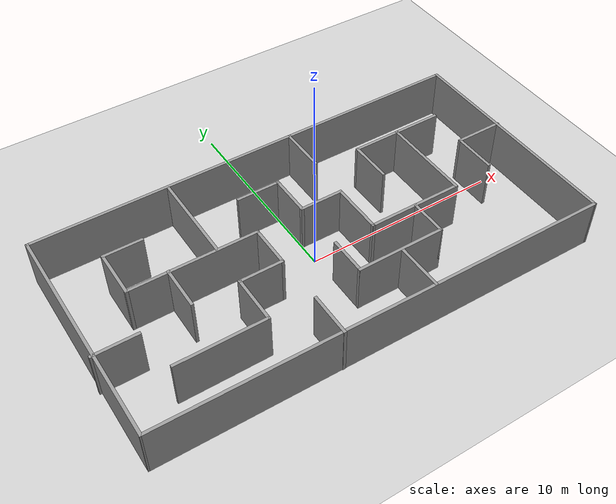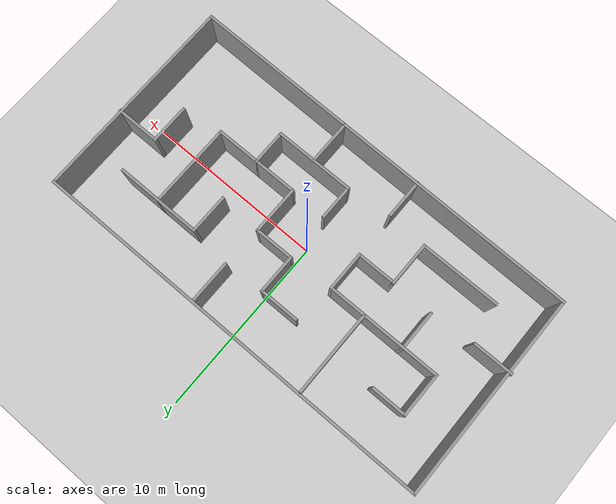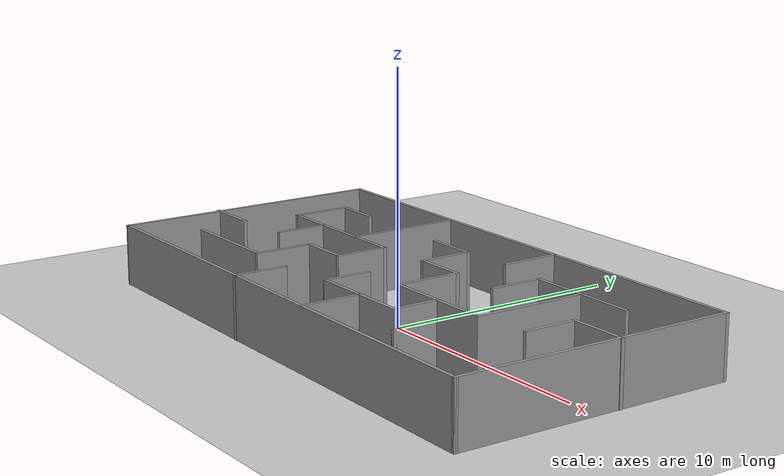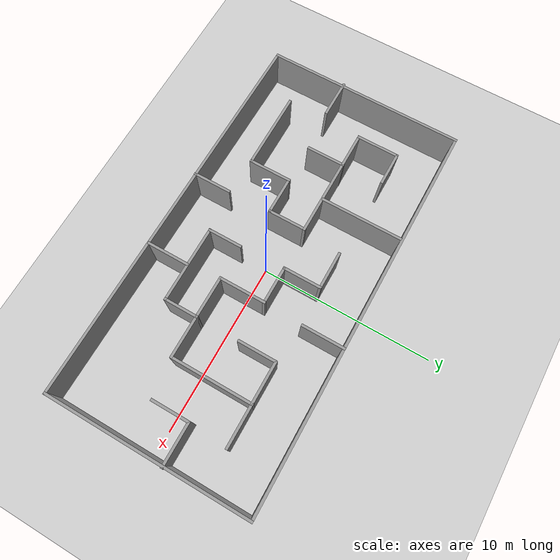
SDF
<?xml version='1.0'?>
<sdf version='1.7'>
  <model name='regular_maze'>
    <include>
      <uri>model://ground_plane</uri>
    </include>
    <pose>0.059107 -0.042971 0 0 -0 0</pose>
    <link name='Wall_0'>
      <collision name='Wall_0_Collision'>
        <geometry>
          <box>
            <size>11.5 0.15 2.5</size>
          </box>
        </geometry>
        <pose>0 0 1.25 0 -0 0</pose>
      </collision>
      <visual name='Wall_0_Visual'>
        <pose>0 0 1.25 0 -0 0</pose>
        <geometry>
          <box>
            <size>11.5 0.15 2.5</size>
          </box>
        </geometry>
        <material>
          <script>
            <uri>file://media/materials/scripts/gazebo.material</uri>
            <name>Gazebo/Grey</name>
          </script>
          <ambient>1 1 1 1</ambient>
        </material>
        <meta>
          <layer>0</layer>
        </meta>
      </visual>
      <pose>-11.2658 0.125413 0 0 -0 -1.5708</pose>
    </link>
    <link name='Wall_10'>
      <collision name='Wall_10_Collision'>
        <geometry>
          <box>
            <size>2.5 0.15 2.5</size>
          </box>
        </geometry>
        <pose>0 0 1.25 0 -0 0</pose>
      </collision>
      <visual name='Wall_10_Visual'>
        <pose>0 0 1.25 0 -0 0</pose>
        <geometry>
          <box>
            <size>2.5 0.15 2.5</size>
          </box>
        </geometry>
        <material>
          <script>
            <uri>file://media/materials/scripts/gazebo.material</uri>
            <name>Gazebo/Grey</name>
          </script>
          <ambient>1 1 1 1</ambient>
        </material>
        <meta>
          <layer>0</layer>
        </meta>
      </visual>
      <pose>2.31323 -4.49286 0 0 -0 1.5708</pose>
    </link>
    <link name='Wall_12'>
      <collision name='Wall_12_Collision'>
        <geometry>
          <box>
            <size>4.5 0.15 2.5</size>
          </box>
        </geometry>
        <pose>0 0 1.25 0 -0 0</pose>
      </collision>
      <visual name='Wall_12_Visual'>
        <pose>0 0 1.25 0 -0 0</pose>
        <geometry>
          <box>
            <size>4.5 0.15 2.5</size>
          </box>
        </geometry>
        <material>
          <script>
            <uri>file://media/materials/scripts/gazebo.material</uri>
            <name>Gazebo/Grey</name>
          </script>
          <ambient>1 1 1 1</ambient>
        </material>
        <meta>
          <layer>0</layer>
        </meta>
      </visual>
      <pose>2.27197 -3.27571 0 0 -0 0</pose>
    </link>
    <link name='Wall_13'>
      <collision name='Wall_13_Collision'>
        <geometry>
          <box>
            <size>2 0.15 2.5</size>
          </box>
        </geometry>
        <pose>0 0 1.25 0 -0 0</pose>
      </collision>
      <visual name='Wall_13_Visual'>
        <pose>0 0 1.25 0 -0 0</pose>
        <geometry>
          <box>
            <size>2 0.15 2.5</size>
          </box>
        </geometry>
        <material>
          <script>
            <uri>file://media/materials/scripts/gazebo.material</uri>
            <name>Gazebo/Grey</name>
          </script>
          <ambient>1 1 1 1</ambient>
        </material>
        <meta>
          <layer>0</layer>
        </meta>
      </visual>
      <pose>4.44697 -2.35071 0 0 -0 1.5708</pose>
    </link>
    <link name='Wall_14'>
      <collision name='Wall_14_Collision'>
        <geometry>
          <box>
            <size>2.5 0.15 2.5</size>
          </box>
        </geometry>
        <pose>0 0 1.25 0 -0 0</pose>
      </collision>
      <visual name='Wall_14_Visual'>
        <pose>0 0 1.25 0 -0 0</pose>
        <geometry>
          <box>
            <size>2.5 0.15 2.5</size>
          </box>
        </geometry>
        <material>
          <script>
            <uri>file://media/materials/scripts/gazebo.material</uri>
            <name>Gazebo/Grey</name>
          </script>
          <ambient>1 1 1 1</ambient>
        </material>
        <meta>
          <layer>0</layer>
        </meta>
      </visual>
      <pose>5.62197 -1.42571 0 0 -0 0</pose>
    </link>
    <link name='Wall_15'>
      <collision name='Wall_15_Collision'>
        <geometry>
          <box>
            <size>4.75 0.15 2.5</size>
          </box>
        </geometry>
        <pose>0 0 1.25 0 -0 0</pose>
      </collision>
      <visual name='Wall_15_Visual'>
        <pose>0 0 1.25 0 -0 0</pose>
        <geometry>
          <box>
            <size>4.75 0.15 2.5</size>
          </box>
        </geometry>
        <material>
          <script>
            <uri>file://media/materials/scripts/gazebo.material</uri>
            <name>Gazebo/Grey</name>
          </script>
          <ambient>1 1 1 1</ambient>
        </material>
        <meta>
          <layer>0</layer>
        </meta>
      </visual>
      <pose>6.79697 0.874292 0 0 -0 1.5708</pose>
    </link>
    <link name='Wall_16'>
      <collision name='Wall_16_Collision'>
        <geometry>
          <box>
            <size>2.5 0.15 2.5</size>
          </box>
        </geometry>
        <pose>0 0 1.25 0 -0 0</pose>
      </collision>
      <visual name='Wall_16_Visual'>
        <pose>0 0 1.25 0 -0 0</pose>
        <geometry>
          <box>
            <size>2.5 0.15 2.5</size>
          </box>
        </geometry>
        <material>
          <script>
            <uri>file://media/materials/scripts/gazebo.material</uri>
            <name>Gazebo/Grey</name>
          </script>
          <ambient>1 1 1 1</ambient>
        </material>
        <meta>
          <layer>0</layer>
        </meta>
      </visual>
      <pose>7.97197 3.17429 0 0 -0 0</pose>
    </link>
    <link name='Wall_18'>
      <collision name='Wall_18_Collision'>
        <geometry>
          <box>
            <size>2.5 0.15 2.5</size>
          </box>
        </geometry>
        <pose>0 0 1.25 0 -0 0</pose>
      </collision>
      <visual name='Wall_18_Visual'>
        <pose>0 0 1.25 0 -0 0</pose>
        <geometry>
          <box>
            <size>2.5 0.15 2.5</size>
          </box>
        </geometry>
        <material>
          <script>
            <uri>file://media/materials/scripts/gazebo.material</uri>
            <name>Gazebo/Grey</name>
          </script>
          <ambient>1 1 1 1</ambient>
        </material>
        <meta>
          <layer>0</layer>
        </meta>
      </visual>
      <pose>5.62197 3.17429 0 0 -0 3.14159</pose>
    </link>
    <link name='Wall_19'>
      <collision name='Wall_19_Collision'>
        <geometry>
          <box>
            <size>2.25 0.15 2.5</size>
          </box>
        </geometry>
        <pose>0 0 1.25 0 -0 0</pose>
      </collision>
      <visual name='Wall_19_Visual'>
        <pose>0 0 1.25 0 -0 0</pose>
        <geometry>
          <box>
            <size>2.25 0.15 2.5</size>
          </box>
        </geometry>
        <material>
          <script>
            <uri>file://media/materials/scripts/gazebo.material</uri>
            <name>Gazebo/Grey</name>
          </script>
          <ambient>1 1 1 1</ambient>
        </material>
        <meta>
          <layer>0</layer>
        </meta>
      </visual>
      <pose>4.44697 2.12429 0 0 -0 -1.5708</pose>
    </link>
    <link name='Wall_2'>
      <collision name='Wall_2_Collision'>
        <geometry>
          <box>
            <size>22.75 0.15 2.5</size>
          </box>
        </geometry>
        <pose>0 0 1.25 0 -0 0</pose>
      </collision>
      <visual name='Wall_2_Visual'>
        <pose>0 0 1.25 0 -0 0</pose>
        <geometry>
          <box>
            <size>22.75 0.15 2.5</size>
          </box>
        </geometry>
        <material>
          <script>
            <uri>file://media/materials/scripts/gazebo.material</uri>
            <name>Gazebo/Grey</name>
          </script>
          <ambient>1 1 1 1</ambient>
        </material>
        <meta>
          <layer>0</layer>
        </meta>
      </visual>
      <pose>0.034228 5.80041 0 0 -0 0</pose>
    </link>
    <link name='Wall_21'>
      <collision name='Wall_21_Collision'>
        <geometry>
          <box>
            <size>2.5 0.15 2.5</size>
          </box>
        </geometry>
        <pose>0 0 1.25 0 -0 0</pose>
      </collision>
      <visual name='Wall_21_Visual'>
        <pose>0 0 1.25 0 -0 0</pose>
        <geometry>
          <box>
            <size>2.5 0.15 2.5</size>
          </box>
        </geometry>
        <material>
          <script>
            <uri>file://media/materials/scripts/gazebo.material</uri>
            <name>Gazebo/Grey</name>
          </script>
          <ambient>1 1 1 1</ambient>
        </material>
        <meta>
          <layer>0</layer>
        </meta>
      </visual>
      <pose>3.27197 -1.42571 0 0 -0 3.14159</pose>
    </link>
    <link name='Wall_22'>
      <collision name='Wall_22_Collision'>
        <geometry>
          <box>
            <size>2.75 0.15 2.5</size>
          </box>
        </geometry>
        <pose>0 0 1.25 0 -0 0</pose>
      </collision>
      <visual name='Wall_22_Visual'>
        <pose>0 0 1.25 0 -0 0</pose>
        <geometry>
          <box>
            <size>2.75 0.15 2.5</size>
          </box>
        </geometry>
        <material>
          <script>
            <uri>file://media/materials/scripts/gazebo.material</uri>
            <name>Gazebo/Grey</name>
          </script>
          <ambient>1 1 1 1</ambient>
        </material>
        <meta>
          <layer>0</layer>
        </meta>
      </visual>
      <pose>2.09697 -0.125708 0 0 -0 1.5708</pose>
    </link>
    <link name='Wall_23'>
      <collision name='Wall_23_Collision'>
        <geometry>
          <box>
            <size>2.25 0.15 2.5</size>
          </box>
        </geometry>
        <pose>0 0 1.25 0 -0 0</pose>
      </collision>
      <visual name='Wall_23_Visual'>
        <pose>0 0 1.25 0 -0 0</pose>
        <geometry>
          <box>
            <size>2.25 0.15 2.5</size>
          </box>
        </geometry>
        <material>
          <script>
            <uri>file://media/materials/scripts/gazebo.material</uri>
            <name>Gazebo/Grey</name>
          </script>
          <ambient>1 1 1 1</ambient>
        </material>
        <meta>
          <layer>0</layer>
        </meta>
      </visual>
      <pose>1.04697 1.17429 0 0 -0 3.14159</pose>
    </link>
    <link name='Wall_24'>
      <collision name='Wall_24_Collision'>
        <geometry>
          <box>
            <size>2.25 0.15 2.5</size>
          </box>
        </geometry>
        <pose>0 0 1.25 0 -0 0</pose>
      </collision>
      <visual name='Wall_24_Visual'>
        <pose>0 0 1.25 0 -0 0</pose>
        <geometry>
          <box>
            <size>2.25 0.15 2.5</size>
          </box>
        </geometry>
        <material>
          <script>
            <uri>file://media/materials/scripts/gazebo.material</uri>
            <name>Gazebo/Grey</name>
          </script>
          <ambient>1 1 1 1</ambient>
        </material>
        <meta>
          <layer>0</layer>
        </meta>
      </visual>
      <pose>-0.003031 2.22429 0 0 -0 1.5708</pose>
    </link>
    <link name='Wall_25'>
      <collision name='Wall_25_Collision'>
        <geometry>
          <box>
            <size>2.25 0.15 2.5</size>
          </box>
        </geometry>
        <pose>0 0 1.25 0 -0 0</pose>
      </collision>
      <visual name='Wall_25_Visual'>
        <pose>0 0 1.25 0 -0 0</pose>
        <geometry>
          <box>
            <size>2.25 0.15 2.5</size>
          </box>
        </geometry>
        <material>
          <script>
            <uri>file://media/materials/scripts/gazebo.material</uri>
            <name>Gazebo/Grey</name>
          </script>
          <ambient>1 1 1 1</ambient>
        </material>
        <meta>
          <layer>0</layer>
        </meta>
      </visual>
      <pose>-1.05303 3.27429 0 0 -0 3.14159</pose>
    </link>
    <link name='Wall_27'>
      <collision name='Wall_27_Collision'>
        <geometry>
          <box>
            <size>4.5 0.15 2.5</size>
          </box>
        </geometry>
        <pose>0 0 1.25 0 -0 0</pose>
      </collision>
      <visual name='Wall_27_Visual'>
        <pose>0 0 1.25 0 -0 0</pose>
        <geometry>
          <box>
            <size>4.5 0.15 2.5</size>
          </box>
        </geometry>
        <material>
          <script>
            <uri>file://media/materials/scripts/gazebo.material</uri>
            <name>Gazebo/Grey</name>
          </script>
          <ambient>1 1 1 1</ambient>
        </material>
        <meta>
          <layer>0</layer>
        </meta>
      </visual>
      <pose>-6.69862 -3.41642 0 0 -0 0</pose>
    </link>
    <link name='Wall_28'>
      <collision name='Wall_28_Collision'>
        <geometry>
          <box>
            <size>2.5 0.15 2.5</size>
          </box>
        </geometry>
        <pose>0 0 1.25 0 -0 0</pose>
      </collision>
      <visual name='Wall_28_Visual'>
        <pose>0 0 1.25 0 -0 0</pose>
        <geometry>
          <box>
            <size>2.5 0.15 2.5</size>
          </box>
        </geometry>
        <material>
          <script>
            <uri>file://media/materials/scripts/gazebo.material</uri>
            <name>Gazebo/Grey</name>
          </script>
          <ambient>1 1 1 1</ambient>
        </material>
        <meta>
          <layer>0</layer>
        </meta>
      </visual>
      <pose>-4.52362 -2.24142 0 0 -0 1.5708</pose>
    </link>
    <link name='Wall_29'>
      <collision name='Wall_29_Collision'>
        <geometry>
          <box>
            <size>2.25 0.15 2.5</size>
          </box>
        </geometry>
        <pose>0 0 1.25 0 -0 0</pose>
      </collision>
      <visual name='Wall_29_Visual'>
        <pose>0 0 1.25 0 -0 0</pose>
        <geometry>
          <box>
            <size>2.25 0.15 2.5</size>
          </box>
        </geometry>
        <material>
          <script>
            <uri>file://media/materials/scripts/gazebo.material</uri>
            <name>Gazebo/Grey</name>
          </script>
          <ambient>1 1 1 1</ambient>
        </material>
        <meta>
          <layer>0</layer>
        </meta>
      </visual>
      <pose>-3.47362 -1.06642 0 0 -0 0</pose>
    </link>
    <link name='Wall_3'>
      <collision name='Wall_3_Collision'>
        <geometry>
          <box>
            <size>11.75 0.15 2.5</size>
          </box>
        </geometry>
        <pose>0 0 1.25 0 -0 0</pose>
      </collision>
      <visual name='Wall_3_Visual'>
        <pose>0 0 1.25 0 -0 0</pose>
        <geometry>
          <box>
            <size>11.75 0.15 2.5</size>
          </box>
        </geometry>
        <material>
          <script>
            <uri>file://media/materials/scripts/gazebo.material</uri>
            <name>Gazebo/Grey</name>
          </script>
          <ambient>1 1 1 1</ambient>
        </material>
        <meta>
          <layer>0</layer>
        </meta>
      </visual>
      <pose>11.3342 0.000412 0 0 -0 -1.5708</pose>
    </link>
    <link name='Wall_30'>
      <collision name='Wall_30_Collision'>
        <geometry>
          <box>
            <size>2.25 0.15 2.5</size>
          </box>
        </geometry>
        <pose>0 0 1.25 0 -0 0</pose>
      </collision>
      <visual name='Wall_30_Visual'>
        <pose>0 0 1.25 0 -0 0</pose>
        <geometry>
          <box>
            <size>2.25 0.15 2.5</size>
          </box>
        </geometry>
        <material>
          <script>
            <uri>file://media/materials/scripts/gazebo.material</uri>
            <name>Gazebo/Grey</name>
          </script>
          <ambient>1 1 1 1</ambient>
        </material>
        <meta>
          <layer>0</layer>
        </meta>
      </visual>
      <pose>-2.42362 -0.016423 0 0 -0 1.5708</pose>
    </link>
    <link name='Wall_31'>
      <collision name='Wall_31_Collision'>
        <geometry>
          <box>
            <size>6.5 0.15 2.5</size>
          </box>
        </geometry>
        <pose>0 0 1.25 0 -0 0</pose>
      </collision>
      <visual name='Wall_31_Visual'>
        <pose>0 0 1.25 0 -0 0</pose>
        <geometry>
          <box>
            <size>6.5 0.15 2.5</size>
          </box>
        </geometry>
        <material>
          <script>
            <uri>file://media/materials/scripts/gazebo.material</uri>
            <name>Gazebo/Grey</name>
          </script>
          <ambient>1 1 1 1</ambient>
        </material>
        <meta>
          <layer>0</layer>
        </meta>
      </visual>
      <pose>-5.59862 1.03358 0 0 -0 3.14159</pose>
    </link>
    <link name='Wall_32'>
      <collision name='Wall_32_Collision'>
        <geometry>
          <box>
            <size>2.5 0.15 2.5</size>
          </box>
        </geometry>
        <pose>0 0 1.25 0 -0 0</pose>
      </collision>
      <visual name='Wall_32_Visual'>
        <pose>0 0 1.25 0 -0 0</pose>
        <geometry>
          <box>
            <size>2.5 0.15 2.5</size>
          </box>
        </geometry>
        <material>
          <script>
            <uri>file://media/materials/scripts/gazebo.material</uri>
            <name>Gazebo/Grey</name>
          </script>
          <ambient>1 1 1 1</ambient>
        </material>
        <meta>
          <layer>0</layer>
        </meta>
      </visual>
      <pose>-8.77362 2.20858 0 0 -0 1.5708</pose>
    </link>
    <link name='Wall_33'>
      <collision name='Wall_33_Collision'>
        <geometry>
          <box>
            <size>2 0.15 2.5</size>
          </box>
        </geometry>
        <pose>0 0 1.25 0 -0 0</pose>
      </collision>
      <visual name='Wall_33_Visual'>
        <pose>0 0 1.25 0 -0 0</pose>
        <geometry>
          <box>
            <size>2 0.15 2.5</size>
          </box>
        </geometry>
        <material>
          <script>
            <uri>file://media/materials/scripts/gazebo.material</uri>
            <name>Gazebo/Grey</name>
          </script>
          <ambient>1 1 1 1</ambient>
        </material>
        <meta>
          <layer>0</layer>
        </meta>
      </visual>
      <pose>-7.84862 3.38358 0 0 -0 0</pose>
    </link>
    <link name='Wall_35'>
      <collision name='Wall_35_Collision'>
        <geometry>
          <box>
            <size>2.25 0.15 2.5</size>
          </box>
        </geometry>
        <pose>0 0 1.25 0 -0 0</pose>
      </collision>
      <visual name='Wall_35_Visual'>
        <pose>0 0 1.25 0 -0 0</pose>
        <geometry>
          <box>
            <size>2.25 0.15 2.5</size>
          </box>
        </geometry>
        <material>
          <script>
            <uri>file://media/materials/scripts/gazebo.material</uri>
            <name>Gazebo/Grey</name>
          </script>
          <ambient>1 1 1 1</ambient>
        </material>
        <meta>
          <layer>0</layer>
        </meta>
      </visual>
      <pose>-6.79807 0.00128 0 0 -0 -1.5708</pose>
    </link>
    <link name='Wall_37'>
      <collision name='Wall_37_Collision'>
        <geometry>
          <box>
            <size>4.75 0.15 2.5</size>
          </box>
        </geometry>
        <pose>0 0 1.25 0 -0 0</pose>
      </collision>
      <visual name='Wall_37_Visual'>
        <pose>0 0 1.25 0 -0 0</pose>
        <geometry>
          <box>
            <size>4.75 0.15 2.5</size>
          </box>
        </geometry>
        <material>
          <script>
            <uri>file://media/materials/scripts/gazebo.material</uri>
            <name>Gazebo/Grey</name>
          </script>
          <ambient>1 1 1 1</ambient>
        </material>
        <meta>
          <layer>0</layer>
        </meta>
      </visual>
      <pose>-4.44109 3.38646 0 0 -0 1.5708</pose>
    </link>
    <link name='Wall_39'>
      <collision name='Wall_39_Collision'>
        <geometry>
          <box>
            <size>2.5 0.15 2.5</size>
          </box>
        </geometry>
        <pose>0 0 1.25 0 -0 0</pose>
      </collision>
      <visual name='Wall_39_Visual'>
        <pose>0 0 1.25 0 -0 0</pose>
        <geometry>
          <box>
            <size>2.5 0.15 2.5</size>
          </box>
        </geometry>
        <material>
          <script>
            <uri>file://media/materials/scripts/gazebo.material</uri>
            <name>Gazebo/Grey</name>
          </script>
          <ambient>1 1 1 1</ambient>
        </material>
        <meta>
          <layer>0</layer>
        </meta>
      </visual>
      <pose>2.18789 4.62173 0 0 -0 -1.5708</pose>
    </link>
    <link name='Wall_4'>
      <collision name='Wall_4_Collision'>
        <geometry>
          <box>
            <size>22.7514 0.15 2.5</size>
          </box>
        </geometry>
        <pose>0 0 1.25 0 -0 0</pose>
      </collision>
      <visual name='Wall_4_Visual'>
        <pose>0 0 1.25 0 -0 0</pose>
        <geometry>
          <box>
            <size>22.7514 0.15 2.5</size>
          </box>
        </geometry>
        <material>
          <script>
            <uri>file://media/materials/scripts/gazebo.material</uri>
            <name>Gazebo/Grey</name>
          </script>
          <ambient>1 1 1 1</ambient>
        </material>
        <meta>
          <layer>0</layer>
        </meta>
      </visual>
      <pose>0.034228 -5.67459 0 0 -0 3.13053</pose>
    </link>
    <link name='Wall_41'>
      <collision name='Wall_41_Collision'>
        <geometry>
          <box>
            <size>2.5 0.15 2.5</size>
          </box>
        </geometry>
        <pose>0 0 1.25 0 -0 0</pose>
      </collision>
      <visual name='Wall_41_Visual'>
        <pose>0 0 1.25 0 -0 0</pose>
        <geometry>
          <box>
            <size>2.5 0.15 2.5</size>
          </box>
        </geometry>
        <material>
          <script>
            <uri>file://media/materials/scripts/gazebo.material</uri>
            <name>Gazebo/Grey</name>
          </script>
          <ambient>1 1 1 1</ambient>
        </material>
        <meta>
          <layer>0</layer>
        </meta>
      </visual>
      <pose>10.1963 0.982515 0 0 -0 3.14159</pose>
    </link>
    <link name='Wall_42'>
      <collision name='Wall_42_Collision'>
        <geometry>
          <box>
            <size>2.25 0.15 2.5</size>
          </box>
        </geometry>
        <pose>0 0 1.25 0 -0 0</pose>
      </collision>
      <visual name='Wall_42_Visual'>
        <pose>0 0 1.25 0 -0 0</pose>
        <geometry>
          <box>
            <size>2.25 0.15 2.5</size>
          </box>
        </geometry>
        <material>
          <script>
            <uri>file://media/materials/scripts/gazebo.material</uri>
            <name>Gazebo/Grey</name>
          </script>
          <ambient>1 1 1 1</ambient>
        </material>
        <meta>
          <layer>0</layer>
        </meta>
      </visual>
      <pose>9.02131 -0.067486 0 0 -0 -1.5708</pose>
    </link>
    <link name='Wall_44'>
      <collision name='Wall_44_Collision'>
        <geometry>
          <box>
            <size>2 0.15 2.5</size>
          </box>
        </geometry>
        <pose>0 0 1.25 0 -0 0</pose>
      </collision>
      <visual name='Wall_44_Visual'>
        <pose>0 0 1.25 0 -0 0</pose>
        <geometry>
          <box>
            <size>2 0.15 2.5</size>
          </box>
        </geometry>
        <material>
          <script>
            <uri>file://media/materials/scripts/gazebo.material</uri>
            <name>Gazebo/Grey</name>
          </script>
          <ambient>1 1 1 1</ambient>
        </material>
        <meta>
          <layer>0</layer>
        </meta>
      </visual>
      <pose>0.096969 -2.35071 0 0 -0 1.5708</pose>
    </link>
    <link name='Wall_6'>
      <collision name='Wall_6_Collision'>
        <geometry>
          <box>
            <size>2.25 0.15 2.5</size>
          </box>
        </geometry>
        <pose>0 0 1.25 0 -0 0</pose>
      </collision>
      <visual name='Wall_6_Visual'>
        <pose>0 0 1.25 0 -0 0</pose>
        <geometry>
          <box>
            <size>2.25 0.15 2.5</size>
          </box>
        </geometry>
        <material>
          <script>
            <uri>file://media/materials/scripts/gazebo.material</uri>
            <name>Gazebo/Grey</name>
          </script>
          <ambient>1 1 1 1</ambient>
        </material>
        <meta>
          <layer>0</layer>
        </meta>
      </visual>
      <pose>-10.3213 -1.27052 0 0 -0 0</pose>
    </link>
    <link name='Wall_8'>
      <collision name='Wall_8_Collision'>
        <geometry>
          <box>
            <size>2.25 0.15 2.5</size>
          </box>
        </geometry>
        <pose>0 0 1.25 0 -0 0</pose>
      </collision>
      <visual name='Wall_8_Visual'>
        <pose>0 0 1.25 0 -0 0</pose>
        <geometry>
          <box>
            <size>2.25 0.15 2.5</size>
          </box>
        </geometry>
        <material>
          <script>
            <uri>file://media/materials/scripts/gazebo.material</uri>
            <name>Gazebo/Grey</name>
          </script>
          <ambient>1 1 1 1</ambient>
        </material>
        <meta>
          <layer>0</layer>
        </meta>
      </visual>
      <pose>-2.33037 -4.61786 0 0 -0 1.5708</pose>
    </link>
    <static>1</static>
  </model>
</sdf>
